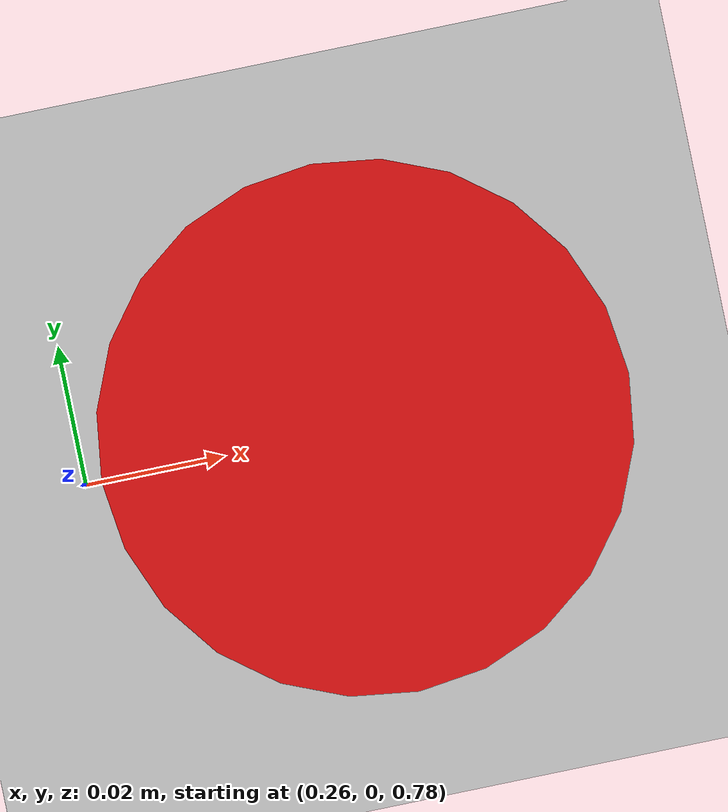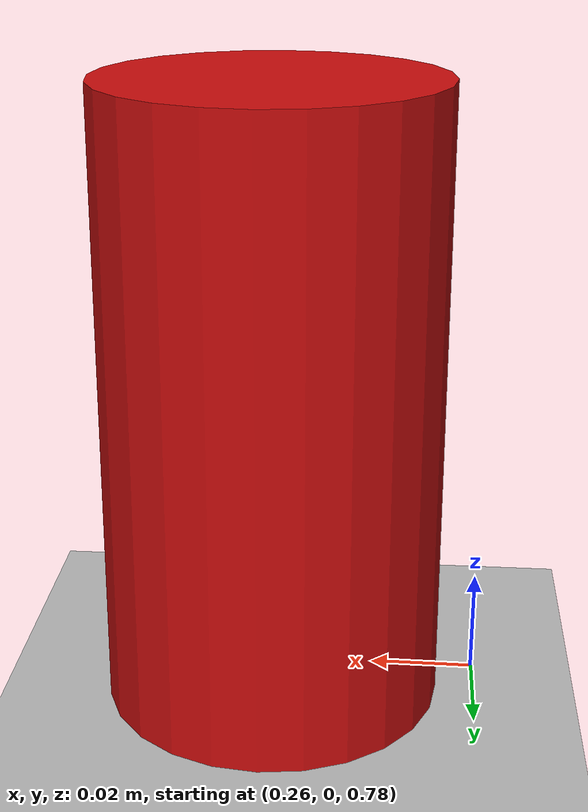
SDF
<?xml version="1.0"?>
<sdf version="1.10">
  <world name="pick_place_world">
    <gravity>0 0 -9.81</gravity>

    <plugin filename="gz-sim-pose-publisher-system" name="gz::sim::systems::PosePublisher">
      <publish_link_pose>false</publish_link_pose>
      <publish_collision_pose>false</publish_collision_pose>
      <publish_visual_pose>false</publish_visual_pose>
      <publish_model_pose>true</publish_model_pose>
      <use_pose_vector_msg>true</use_pose_vector_msg>
      <update_frequency>30</update_frequency>
    </plugin>

    <!-- V5-T004: 运行 camera/rgbd 等 sensor 的系统插件 -->
    <plugin filename="gz-sim-sensors-system" name="gz::sim::systems::Sensors">
      <render_engine>ogre2</render_engine>
    </plugin>

    <gui fullscreen="0">

      <plugin filename="MinimalScene" name="3D View">

        <gz-gui>
          <title>3D View</title>
          <property type="bool" key="showTitleBar">false</property>
          <property type="string" key="state">docked</property>
        </gz-gui>

        <engine>ogre2</engine>
        <scene>scene</scene>
        <ambient_light>0.4 0.4 0.4</ambient_light>
        <background_color>0.8 0.8 0.8</background_color>

        <camera_pose>
          0.1 2.5 1.8 0 0 -1.57
        </camera_pose>

      </plugin>

      <!-- Plugins that add functionality to the scene -->
      <plugin filename="EntityContextMenuPlugin" name="Entity context menu">
        <gz-gui>
          <property key="state" type="string">floating</property>
          <property key="width" type="double">5</property>
          <property key="height" type="double">5</property>
          <property key="showTitleBar" type="bool">false</property>
        </gz-gui>
      </plugin>
      <plugin filename="GzSceneManager" name="Scene Manager">
        <gz-gui>
          <property key="resizable" type="bool">false</property>
          <property key="width" type="double">5</property>
          <property key="height" type="double">5</property>
          <property key="state" type="string">floating</property>
          <property key="showTitleBar" type="bool">false</property>
        </gz-gui>
      </plugin>
      <plugin filename="InteractiveViewControl" name="Interactive view control">
        <gz-gui>
          <property key="resizable" type="bool">false</property>
          <property key="width" type="double">5</property>
          <property key="height" type="double">5</property>
          <property key="state" type="string">floating</property>
          <property key="showTitleBar" type="bool">false</property>
        </gz-gui>
      </plugin>
      <plugin filename="CameraTracking" name="Camera Tracking">
        <gz-gui>
          <property key="resizable" type="bool">false</property>
          <property key="width" type="double">5</property>
          <property key="height" type="double">5</property>
          <property key="state" type="string">floating</property>
          <property key="showTitleBar" type="bool">false</property>
        </gz-gui>
      </plugin>
      <plugin filename="MarkerManager" name="Marker manager">
        <gz-gui>
          <property key="resizable" type="bool">false</property>
          <property key="width" type="double">5</property>
          <property key="height" type="double">5</property>
          <property key="state" type="string">floating</property>
          <property key="showTitleBar" type="bool">false</property>
        </gz-gui>
      </plugin>
      <plugin filename="SelectEntities" name="Select Entities">
        <gz-gui>
          <property key="resizable" type="bool">false</property>
          <property key="width" type="double">5</property>
          <property key="height" type="double">5</property>
          <property key="state" type="string">floating</property>
          <property key="showTitleBar" type="bool">false</property>
        </gz-gui>
      </plugin>

      <plugin filename="Spawn" name="Spawn Entities">
        <gz-gui>
          <property key="resizable" type="bool">false</property>
          <property key="width" type="double">5</property>
          <property key="height" type="double">5</property>
          <property key="state" type="string">floating</property>
          <property key="showTitleBar" type="bool">false</property>
        </gz-gui>
      </plugin>

      <plugin filename="VisualizationCapabilities" name="Visualization Capabilities">
        <gz-gui>
          <property key="resizable" type="bool">false</property>
          <property key="width" type="double">5</property>
          <property key="height" type="double">5</property>
          <property key="state" type="string">floating</property>
          <property key="showTitleBar" type="bool">false</property>
        </gz-gui>
      </plugin>

      <!-- World control -->
      <plugin filename="WorldControl" name="World control">
        <gz-gui>
          <title>World control</title>
          <property type="bool" key="showTitleBar">false</property>
          <property type="bool" key="resizable">false</property>
          <property type="double" key="height">72</property>
          <property type="double" key="z">1</property>

          <property type="string" key="state">floating</property>
          <anchors target="3D View">
            <line own="left" target="left" />
            <line own="bottom" target="bottom" />
          </anchors>
        </gz-gui>

        <play_pause>true</play_pause>
        <step>true</step>
        <start_paused>true</start_paused>
        <use_event>true</use_event>

      </plugin>

      <!-- World statistics -->
      <plugin filename="WorldStats" name="World stats">
        <gz-gui>
          <title>World stats</title>
          <property type="bool" key="showTitleBar">false</property>
          <property type="bool" key="resizable">false</property>
          <property type="double" key="height">110</property>
          <property type="double" key="width">290</property>
          <property type="double" key="z">1</property>

          <property type="string" key="state">floating</property>
          <anchors target="3D View">
            <line own="right" target="right" />
            <line own="bottom" target="bottom" />
          </anchors>
        </gz-gui>

        <sim_time>true</sim_time>
        <real_time>true</real_time>
        <real_time_factor>true</real_time_factor>
        <iterations>true</iterations>
      </plugin>

      <!-- Insert simple shapes -->
      <plugin filename="Shapes" name="Shapes">
        <gz-gui>
          <property key="resizable" type="bool">false</property>
          <property key="x" type="double">0</property>
          <property key="y" type="double">0</property>
          <property key="width" type="double">300</property>
          <property key="height" type="double">50</property>
          <property key="state" type="string">floating</property>
          <property key="showTitleBar" type="bool">false</property>
          <property key="cardBackground" type="string">#666666</property>
        </gz-gui>
      </plugin>

      <!-- Insert lights -->
      <plugin filename="Lights" name="Lights">
        <gz-gui>
          <property key="resizable" type="bool">false</property>
          <property key="x" type="double">300</property>
          <property key="y" type="double">0</property>
          <property key="width" type="double">150</property>
          <property key="height" type="double">50</property>
          <property key="state" type="string">floating</property>
          <property key="showTitleBar" type="bool">false</property>
          <property key="cardBackground" type="string">#666666</property>
        </gz-gui>
      </plugin>

      <!-- Translate / rotate -->
      <plugin filename="TransformControl" name="Transform control">
        <gz-gui>
          <property key="resizable" type="bool">false</property>
          <property key="x" type="double">0</property>
          <property key="y" type="double">50</property>
          <property key="width" type="double">250</property>
          <property key="height" type="double">50</property>
          <property key="state" type="string">floating</property>
          <property key="showTitleBar" type="bool">false</property>
          <property key="cardBackground" type="string">#777777</property>
        </gz-gui>
      </plugin>

      <!-- Screenshot -->
      <plugin filename="Screenshot" name="Screenshot">
        <gz-gui>
          <property key="resizable" type="bool">false</property>
          <property key="x" type="double">250</property>
          <property key="y" type="double">50</property>
          <property key="width" type="double">50</property>
          <property key="height" type="double">50</property>
          <property key="state" type="string">floating</property>
          <property key="showTitleBar" type="bool">false</property>
          <property key="cardBackground" type="string">#777777</property>
        </gz-gui>
      </plugin>

      <!-- Copy/Paste -->
      <plugin filename="CopyPaste" name="CopyPaste">
        <gz-gui>
          <property key="resizable" type="bool">false</property>
          <property key="x" type="double">300</property>
          <property key="y" type="double">50</property>
          <property key="width" type="double">100</property>
          <property key="height" type="double">50</property>
          <property key="state" type="string">floating</property>
          <property key="showTitleBar" type="bool">false</property>
          <property key="cardBackground" type="string">#777777</property>
        </gz-gui>
      </plugin>

      <!-- Inspector -->
      <plugin filename="ComponentInspector" name="Component inspector">
        <gz-gui>
          <property type="bool" key="showTitleBar">false</property>
          <property type="string" key="state">docked</property>
        </gz-gui>
      </plugin>

      <!-- Entity tree -->
      <plugin filename="EntityTree" name="Entity tree">
        <gz-gui>
          <property type="bool" key="showTitleBar">false</property>
          <property type="string" key="state">docked</property>
        </gz-gui>
      </plugin>

      <!-- Camera view presets: top, front, side, home -->
      <plugin filename="ViewAngle" name="View angle">
        <gz-gui>
          <property type="string" key="state">docked_collapsed</property>
        </gz-gui>
      </plugin>

    </gui>

    <light name="sun" type="directional">
      <pose>0 0 10 0 0 0</pose>
      <diffuse>0.8 0.8 0.8 1</diffuse>
      <direction>-0.5 0.1 -0.9</direction>
    </light>

    <!-- V5-T004: eye-to-hand 深度相机（独立 model，避免 URDF fixed joint lumping） -->
    <model name="rgbd_camera">
      <static>true</static>
      <pose>0.4 0.5 1.4 0 0.8357 -1.7682</pose>
      <link name="link">
        <sensor name="camera" type="camera">
          <topic>camera</topic>
          <update_rate>10</update_rate>
          <camera>
            <visibility_mask>0x00FFFFFF</visibility_mask>
            <horizontal_fov>1.047</horizontal_fov>
            <image>
              <width>640</width>
              <height>480</height>
            </image>
            <clip>
              <near>0.1</near>
              <far>10.0</far>
            </clip>
          </camera>
        </sensor>
      </link>
    </model>

    <model name="table">
      <static>true</static>
      <pose>0 0 0.75 0 0 0</pose>

      <link name="table_top">
        <collision name="collision">
          <geometry>
            <box>
              <size>1.2 0.8 0.05</size>
            </box>
          </geometry>
        </collision>

        <visual name="visual">
          <geometry>
            <box>
              <size>1.2 0.8 0.05</size>
            </box>
          </geometry>
        </visual>
      </link>
    </model>

    <model name="coke">
      <pose>0.3 0 0.836 0 0 0</pose>

      <link name="body">
        <inertial>
          <mass>0.1</mass>
          <inertia>
            <ixx>0.0005294</ixx>
            <iyy>0.0005294</iyy>
            <izz>0.0001906</izz>
          </inertia>
        </inertial>

        <collision name="collision">
          <geometry>
            <cylinder>
              <radius>0.033</radius>
              <length>0.122</length>
            </cylinder>
          </geometry>
        </collision>

        <sensor name="coke_contact_sensor" type="contact">
          <always_on>true</always_on>
          <update_rate>200</update_rate>
          <topic>/coke/contacts</topic>

          <contact>
            <collision>collision</collision>
          </contact>
        </sensor>

        <visual name="visual">
          <geometry>
            <cylinder>
              <radius>0.033</radius>
              <length>0.122</length>
            </cylinder>
          </geometry>
          <material>
            <ambient>0.8 0.05 0.05 1</ambient>
            <diffuse>0.8 0.05 0.05 1</diffuse>
          </material>
        </visual>
      </link>
    </model>

    <!-- Explicit defaults are needed once a world system plugin is specified. -->
    <plugin
      filename="gz-sim-physics-system"
      name="gz::sim::systems::Physics" />

    <plugin
      filename="gz-sim-user-commands-system"
      name="gz::sim::systems::UserCommands" />

    <plugin
      filename="gz-sim-scene-broadcaster-system"
      name="gz::sim::systems::SceneBroadcaster" />

    <plugin
      filename="gz-sim-contact-system"
      name="gz::sim::systems::Contact" />
  </world>
</sdf>
